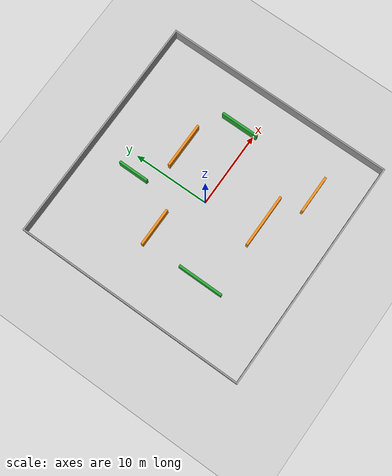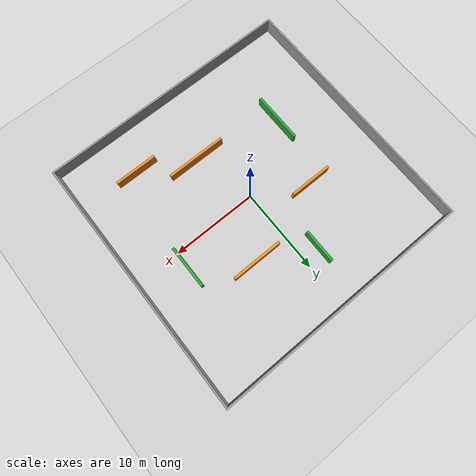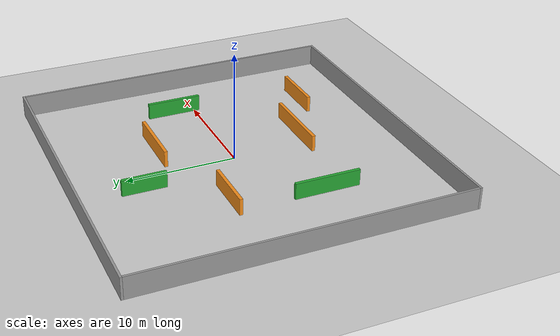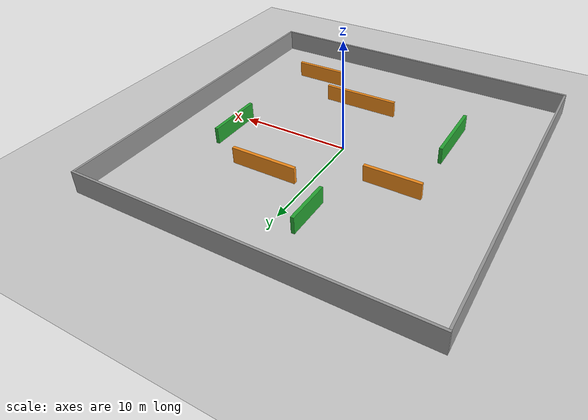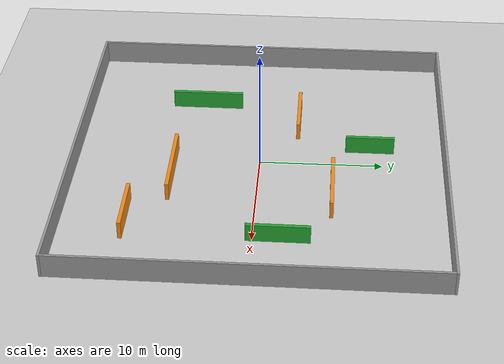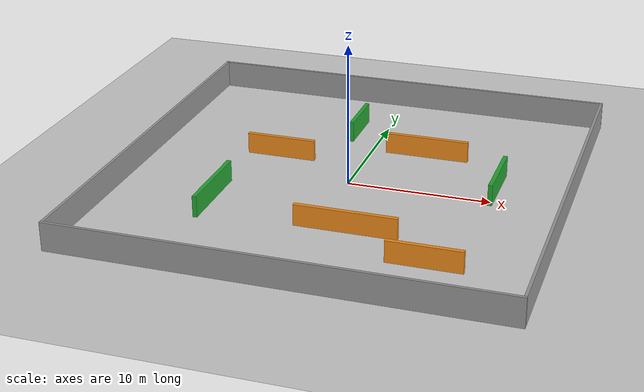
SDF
<?xml version="1.0" ?>
<sdf version="1.6">
  <world name="walls_world">

    <!-- ====== 物理引擎 ====== -->
    <physics type="ode">
      <max_step_size>0.001</max_step_size>
      <real_time_factor>1.0</real_time_factor>
      <real_time_update_rate>1000</real_time_update_rate>
    </physics>

    <!-- ====== 光照 ====== -->
    <include>
      <uri>model://sun</uri>
    </include>

    <!-- ====== 地面 ====== -->
    <model name="ground_plane">
      <static>true</static>
      <link name="link">
        <collision name="collision">
          <geometry>
            <plane>
              <normal>0 0 1</normal>
              <size>100 100</size>
            </plane>
          </geometry>
          <surface>
            <friction>
              <ode>
                <mu>100</mu>
                <mu2>50</mu2>
              </ode>
            </friction>
          </surface>
        </collision>
        <visual name="visual">
          <geometry>
            <plane>
              <normal>0 0 1</normal>
              <size>100 100</size>
            </plane>
          </geometry>
          <material>
            <script>
              <uri>file://media/materials/scripts/gazebo.material</uri>
              <name>Gazebo/Grey</name>
            </script>
          </material>
        </visual>
      </link>
    </model>

    <!-- ====== 边界围墙（高 2m，厚 0.2m）====== -->

    <model name="wall_north">
      <static>true</static>
      <pose>0 15.1 1 0 0 0</pose>
      <link name="link">
        <collision name="collision"><geometry><box><size>30.4 0.2 2.0</size></box></geometry></collision>
        <visual name="visual">
          <geometry><box><size>30.4 0.2 2.0</size></box></geometry>
          <material><script><uri>file://media/materials/scripts/gazebo.material</uri><name>Gazebo/Grey</name></script></material>
        </visual>
      </link>
    </model>

    <model name="wall_south">
      <static>true</static>
      <pose>0 -15.1 1 0 0 0</pose>
      <link name="link">
        <collision name="collision"><geometry><box><size>30.4 0.2 2.0</size></box></geometry></collision>
        <visual name="visual">
          <geometry><box><size>30.4 0.2 2.0</size></box></geometry>
          <material><script><uri>file://media/materials/scripts/gazebo.material</uri><name>Gazebo/Grey</name></script></material>
        </visual>
      </link>
    </model>

    <model name="wall_east">
      <static>true</static>
      <pose>15.1 0 1 0 0 0</pose>
      <link name="link">
        <collision name="collision"><geometry><box><size>0.2 30.0 2.0</size></box></geometry></collision>
        <visual name="visual">
          <geometry><box><size>0.2 30.0 2.0</size></box></geometry>
          <material><script><uri>file://media/materials/scripts/gazebo.material</uri><name>Gazebo/Grey</name></script></material>
        </visual>
      </link>
    </model>

    <model name="wall_west">
      <static>true</static>
      <pose>-15.1 0 1 0 0 0</pose>
      <link name="link">
        <collision name="collision"><geometry><box><size>0.2 30.0 2.0</size></box></geometry></collision>
        <visual name="visual">
          <geometry><box><size>0.2 30.0 2.0</size></box></geometry>
          <material><script><uri>file://media/materials/scripts/gazebo.material</uri><name>Gazebo/Grey</name></script></material>
        </visual>
      </link>
    </model>

    <!-- ====== 内部障碍：横墙（东西走向，橙色）====== -->

    <!-- 横墙A：中心(4,6)，长6m → x∈[1,7] -->
    <model name="wall_h_a">
      <static>true</static>
      <pose>4 6 0.75 0 0 0</pose>
      <link name="link">
        <collision name="collision"><geometry><box><size>6.0 0.3 1.5</size></box></geometry></collision>
        <visual name="visual">
          <geometry><box><size>6.0 0.3 1.5</size></box></geometry>
          <material><script><uri>file://media/materials/scripts/gazebo.material</uri><name>Gazebo/Orange</name></script></material>
        </visual>
      </link>
    </model>

    <!-- 横墙C：中心(-6,3)，长5m → x∈[-8.5,-3.5] -->
    <model name="wall_h_c">
      <static>true</static>
      <pose>-6 3 0.75 0 0 0</pose>
      <link name="link">
        <collision name="collision"><geometry><box><size>5.0 0.3 1.5</size></box></geometry></collision>
        <visual name="visual">
          <geometry><box><size>5.0 0.3 1.5</size></box></geometry>
          <material><script><uri>file://media/materials/scripts/gazebo.material</uri><name>Gazebo/Orange</name></script></material>
        </visual>
      </link>
    </model>

    <!-- 横墙E：中心(2,-7)，长7m → x∈[-1.5,5.5] -->
    <model name="wall_h_e">
      <static>true</static>
      <pose>2 -7 0.75 0 0 0</pose>
      <link name="link">
        <collision name="collision"><geometry><box><size>7.0 0.3 1.5</size></box></geometry></collision>
        <visual name="visual">
          <geometry><box><size>7.0 0.3 1.5</size></box></geometry>
          <material><script><uri>file://media/materials/scripts/gazebo.material</uri><name>Gazebo/Orange</name></script></material>
        </visual>
      </link>
    </model>

    <!-- 横墙G：中心(8,-10)，长5m → x∈[5.5,10.5] -->
    <model name="wall_h_g">
      <static>true</static>
      <pose>8 -10 0.75 0 0 0</pose>
      <link name="link">
        <collision name="collision"><geometry><box><size>5.0 0.3 1.5</size></box></geometry></collision>
        <visual name="visual">
          <geometry><box><size>5.0 0.3 1.5</size></box></geometry>
          <material><script><uri>file://media/materials/scripts/gazebo.material</uri><name>Gazebo/Orange</name></script></material>
        </visual>
      </link>
    </model>

    <!-- ====== 内部障碍：竖墙（南北走向，绿色）====== -->

    <!-- 竖墙B：中心(10,2)，长5m → y∈[-0.5,4.5] -->
    <model name="wall_v_b">
      <static>true</static>
      <pose>10 2 0.75 0 0 0</pose>
      <link name="link">
        <collision name="collision"><geometry><box><size>0.3 5.0 1.5</size></box></geometry></collision>
        <visual name="visual">
          <geometry><box><size>0.3 5.0 1.5</size></box></geometry>
          <material><script><uri>file://media/materials/scripts/gazebo.material</uri><name>Gazebo/Green</name></script></material>
        </visual>
      </link>
    </model>

    <!-- 竖墙D：中心(-8,-5)，长6m → y∈[-8,-2] -->
    <model name="wall_v_d">
      <static>true</static>
      <pose>-8 -5 0.75 0 0 0</pose>
      <link name="link">
        <collision name="collision"><geometry><box><size>0.3 6.0 1.5</size></box></geometry></collision>
        <visual name="visual">
          <geometry><box><size>0.3 6.0 1.5</size></box></geometry>
          <material><script><uri>file://media/materials/scripts/gazebo.material</uri><name>Gazebo/Green</name></script></material>
        </visual>
      </link>
    </model>

    <!-- 竖墙F：中心(-2,9)，长4m → y∈[7,11] -->
    <model name="wall_v_f">
      <static>true</static>
      <pose>-2 9 0.75 0 0 0</pose>
      <link name="link">
        <collision name="collision"><geometry><box><size>0.3 4.0 1.5</size></box></geometry></collision>
        <visual name="visual">
          <geometry><box><size>0.3 4.0 1.5</size></box></geometry>
          <material><script><uri>file://media/materials/scripts/gazebo.material</uri><name>Gazebo/Green</name></script></material>
        </visual>
      </link>
    </model>

  </world>
</sdf>
